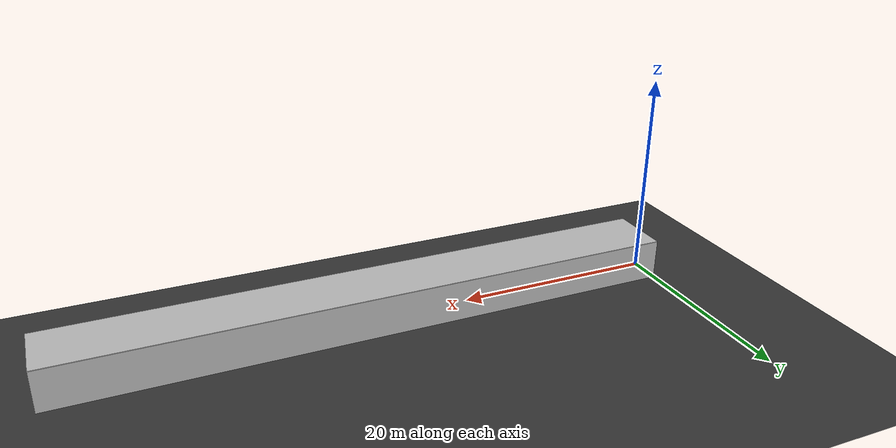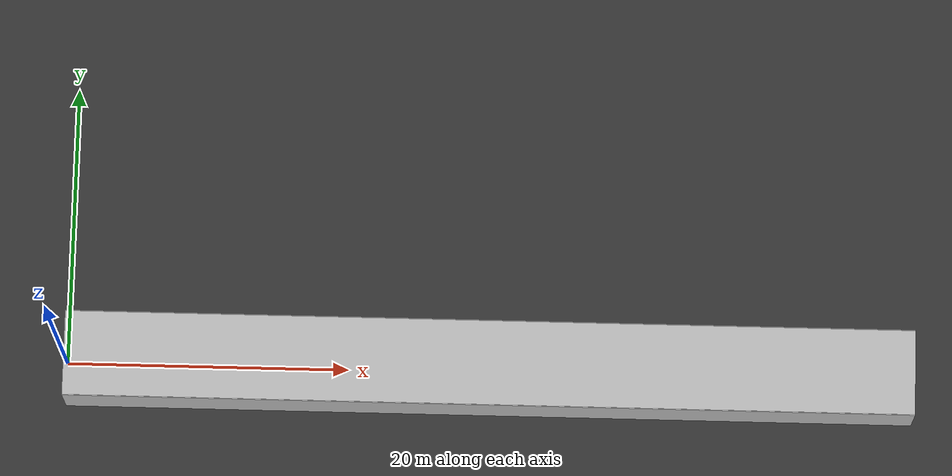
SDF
<?xml version="1.0" ?>
<sdf version="1.8">
  <world name="mine_gallery">
    <physics name="1ms" type="ignored">
      <max_step_size>0.001</max_step_size>
      <real_time_factor>1.0</real_time_factor>
    </physics>

    <!-- Essential Simulation Plugins -->
    <plugin filename="libignition-gazebo-physics-system.so" name="ignition::gazebo::systems::Physics"/>
    <plugin filename="libignition-gazebo-user-commands-system.so" name="ignition::gazebo::systems::UserCommands"/>
    <plugin filename="libignition-gazebo-scene-broadcaster-system.so" name="ignition::gazebo::systems::SceneBroadcaster"/>
    <plugin filename="libignition-gazebo-sensors-system.so" name="ignition::gazebo::systems::Sensors">
      <render_engine>ogre2</render_engine>
    </plugin>

    <scene>
      <ambient>0.2 0.2 0.2 1</ambient>
      <background>0.01 0.01 0.01 1</background>
      <grid>false</grid>
    </scene>

    <!-- Ground Plane (Tags verified and closed) -->
    <model name="ground_plane">
      <static>true</static>
      <link name="link">
        <collision name="c">
          <geometry>
            <plane><normal>0 0 1</normal><size>100 100</size></plane>
          </geometry>
          <surface>
            <friction><ode><mu>0.1</mu><mu2>0.1</mu2></ode></friction>
          </surface>
        </collision>
        <visual name="v">
          <geometry>
            <plane><normal>0 0 1</normal><size>100 100</size></plane>
          </geometry>
          <material><ambient>0.2 0.2 0.2 1</ambient><diffuse>0.2 0.2 0.2 1</diffuse></material>
        </visual>
      </link>
    </model>

    <!-- Hollow Tunnel Structure (60m) -->
    <model name="tunnel_structure">
      <static>true</static>
      <pose>30 0 2 0 0 0</pose>
      <link name="walls">
        <visual name="left_wall"><pose>0 3 0 0 0 0</pose><geometry><box><size>60 0.1 4</size></box></geometry></visual>
        <visual name="right_wall"><pose>0 -3 0 0 0 0</pose><geometry><box><size>60 0.1 4</size></box></geometry></visual>
        <visual name="ceiling"><pose>0 0 2 0 0 0</pose><geometry><box><size>60 6 0.1</size></box></geometry></visual>

        <collision name="l_c"><pose>0 3 0 0 0 0</pose><geometry><box><size>60 0.1 4</size></box></geometry></collision>
        <collision name="r_c"><pose>0 -3 0 0 0 0</pose><geometry><box><size>60 0.1 4</size></box></geometry></collision>
        <collision name="c_c"><pose>0 0 2 0 0 0</pose><geometry><box><size>60 6 0.1</size></box></geometry></collision>
      </link>
    </model>

    <!-- Obstacle Pillar (To test rerouting) -->
    <model name="pillar">
      <static>true</static>
      <pose>10 0 1.5 0 0 0</pose>
      <link name="link">
        <collision name="c"><geometry><cylinder><radius>0.5</radius><length>3</length></cylinder></geometry></collision>
        <visual name="v"><geometry><cylinder><radius>0.5</radius><length>3</length></cylinder></geometry>
          <material><ambient>0.5 0.2 0 1</ambient></material>
        </visual>
      </link>
    </model>

    <light type="point" name="lamp"><pose>0 0 3 0 0 0</pose><diffuse>0.8 0.8 0.8 1</diffuse></light>
  </world>
</sdf>
